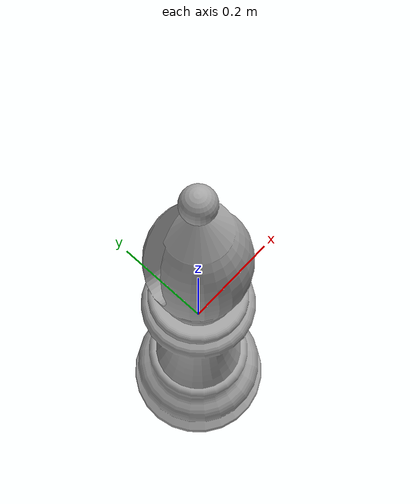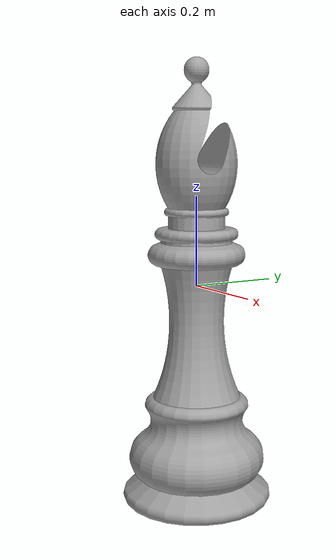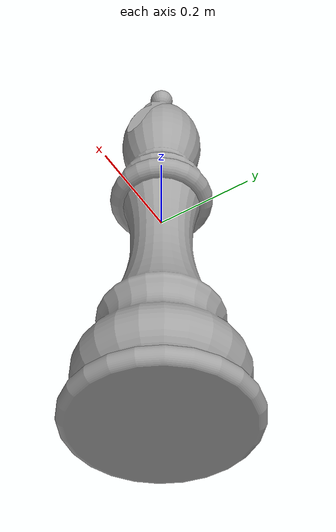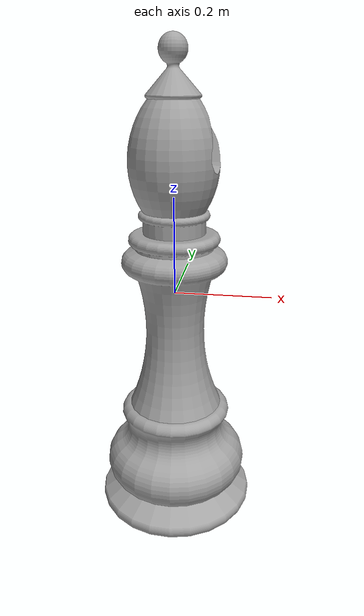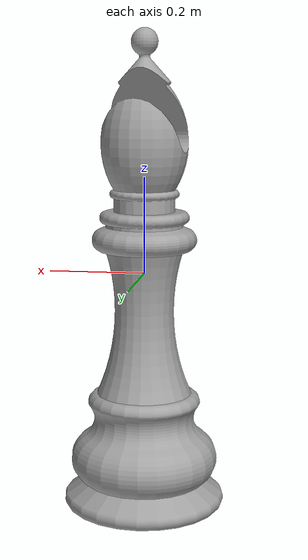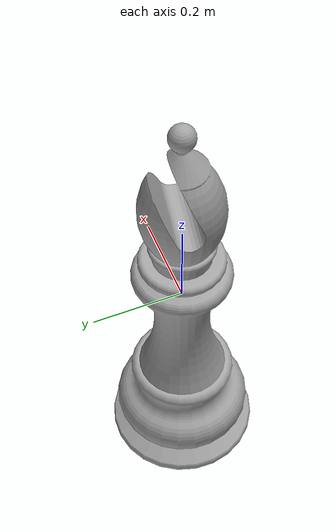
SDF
<?xml version="1.0" ?>
<sdf version="1.5">
  <model name='chess8'>
    <pose>0 0 0 0 0 0</pose>
    <static>1</static>
    <link name='body'>
      <collision name="chess8-coll">
        <pose>0 0 -0.5 0 0 0</pose>
        <geometry>
          <mesh>
            <uri>model://chess8/meshes/chess8.dae</uri>
          </mesh>
        </geometry>
      </collision>
      <visual name='chess8'>
        <cast_shadows>1</cast_shadows>
        <pose>0 0 -0.5 0 0 0</pose>
        <geometry>
          <mesh>
            <uri>model://chess8/meshes/chess8.dae</uri>
          </mesh>
        </geometry>
      </visual>
      <velocity_decay>
        <linear>0</linear>
        <angular>0</angular>
      </velocity_decay>
      <self_collide>0</self_collide>
      <kinematic>0</kinematic>
      <gravity>1</gravity>
    </link>
  </model>

</sdf>
